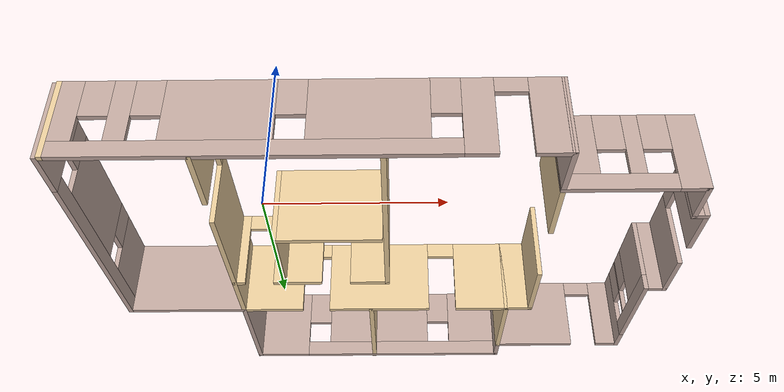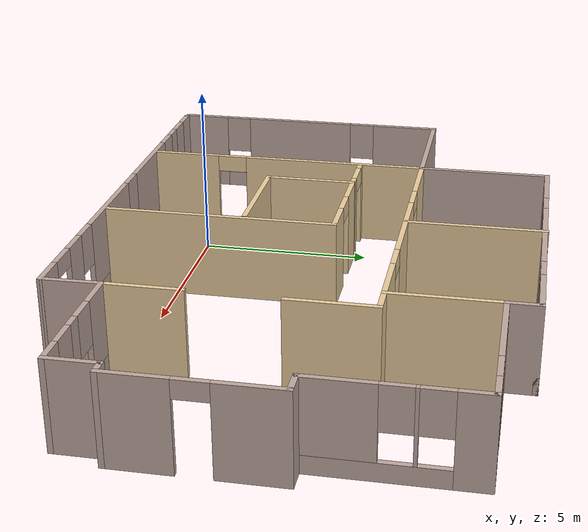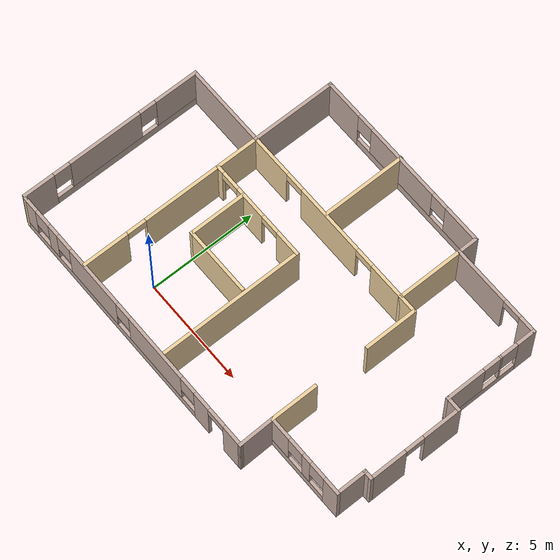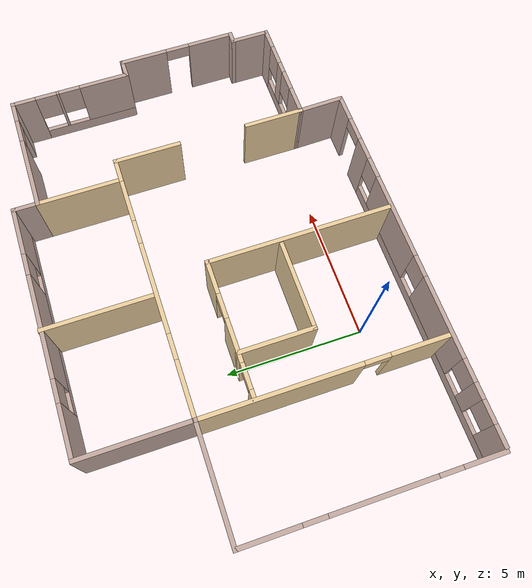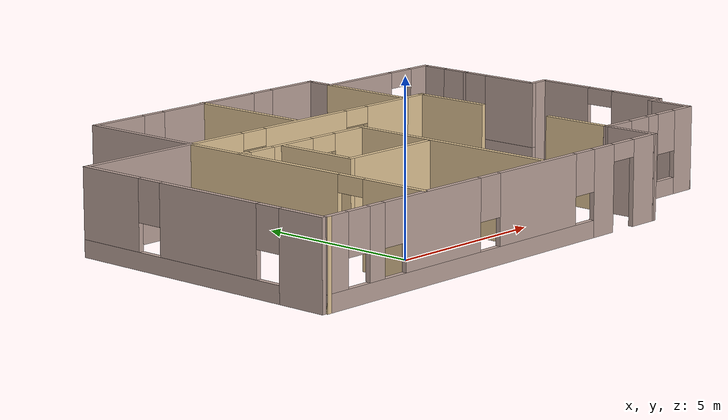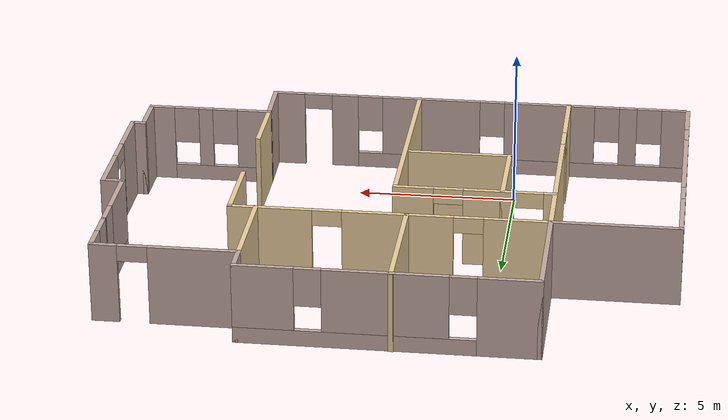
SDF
<?xml version='1.0'?>
<sdf version='1.6'>
  <model name='house'>
    <pose frame=''>3.405 4.15578 0 0 -0 0</pose>
    <link name='Wall_0'>
      <pose frame=''>-8.825 -1.91579 0 0 -0 1.5708</pose>
      <visual name='Wall_0_Visual_0'>
        <pose frame=''>-3.62852 0 1.25 0 -0 0</pose>
        <geometry>
          <box>
            <size>1.49296 0.15 2.5</size>
          </box>
        </geometry>
        <material>
          <script>
            <uri>file://media/materials/scripts/gazebo.material</uri>
            <name>Gazebo/Grey</name>
          </script>
          <ambient>0.760784 0.662745 0.627451 1</ambient>
        </material>
        <meta>
          <layer>0</layer>
        </meta>
      </visual>
      <collision name='Wall_0_Collision_0'>
        <geometry>
          <box>
            <size>1.49296 0.15 2.5</size>
          </box>
        </geometry>
        <pose frame=''>-3.62852 0 1.25 0 -0 0</pose>
      </collision>
      <visual name='Wall_0_Visual_1'>
        <pose frame=''>0.746481 0 0.25 0 -0 0</pose>
        <geometry>
          <box>
            <size>7.25704 0.15 0.5</size>
          </box>
        </geometry>
        <material>
          <script>
            <uri>file://media/materials/scripts/gazebo.material</uri>
            <name>Gazebo/Grey</name>
          </script>
          <ambient>0.760784 0.662745 0.627451 1</ambient>
        </material>
        <meta>
          <layer>0</layer>
        </meta>
      </visual>
      <collision name='Wall_0_Collision_1'>
        <geometry>
          <box>
            <size>7.25704 0.15 0.5</size>
          </box>
        </geometry>
        <pose frame=''>0.746481 0 0.25 0 -0 0</pose>
      </collision>
      <visual name='Wall_0_Visual_2'>
        <pose frame=''>-0.319829 0 1.5 0 -0 0</pose>
        <geometry>
          <box>
            <size>3.52442 0.15 2</size>
          </box>
        </geometry>
        <material>
          <script>
            <uri>file://media/materials/scripts/gazebo.material</uri>
            <name>Gazebo/Grey</name>
          </script>
          <ambient>0.760784 0.662745 0.627451 1</ambient>
        </material>
        <meta>
          <layer>0</layer>
        </meta>
      </visual>
      <collision name='Wall_0_Collision_2'>
        <geometry>
          <box>
            <size>3.52442 0.15 2</size>
          </box>
        </geometry>
        <pose frame=''>-0.319829 0 1.5 0 -0 0</pose>
      </collision>
      <visual name='Wall_0_Visual_3'>
        <pose frame=''>3.30869 0 1.5 0 -0 0</pose>
        <geometry>
          <box>
            <size>2.13262 0.15 2</size>
          </box>
        </geometry>
        <material>
          <script>
            <uri>file://media/materials/scripts/gazebo.material</uri>
            <name>Gazebo/Grey</name>
          </script>
          <ambient>0.760784 0.662745 0.627451 1</ambient>
        </material>
        <meta>
          <layer>0</layer>
        </meta>
      </visual>
      <collision name='Wall_0_Collision_3'>
        <geometry>
          <box>
            <size>2.13262 0.15 2</size>
          </box>
        </geometry>
        <pose frame=''>3.30869 0 1.5 0 -0 0</pose>
      </collision>
      <visual name='Wall_0_Visual_4'>
        <pose frame=''>-2.48204 0 1.9 0 -0 0</pose>
        <geometry>
          <box>
            <size>0.8 0.15 1.2</size>
          </box>
        </geometry>
        <material>
          <script>
            <uri>file://media/materials/scripts/gazebo.material</uri>
            <name>Gazebo/Grey</name>
          </script>
          <ambient>0.760784 0.662745 0.627451 1</ambient>
        </material>
        <meta>
          <layer>0</layer>
        </meta>
      </visual>
      <collision name='Wall_0_Collision_4'>
        <geometry>
          <box>
            <size>0.8 0.15 1.2</size>
          </box>
        </geometry>
        <pose frame=''>-2.48204 0 1.9 0 -0 0</pose>
      </collision>
      <visual name='Wall_0_Visual_5'>
        <pose frame=''>1.84238 0 1.9 0 -0 0</pose>
        <geometry>
          <box>
            <size>0.8 0.15 1.2</size>
          </box>
        </geometry>
        <material>
          <script>
            <uri>file://media/materials/scripts/gazebo.material</uri>
            <name>Gazebo/Grey</name>
          </script>
          <ambient>0.760784 0.662745 0.627451 1</ambient>
        </material>
        <meta>
          <layer>0</layer>
        </meta>
      </visual>
      <collision name='Wall_0_Collision_5'>
        <geometry>
          <box>
            <size>0.8 0.15 1.2</size>
          </box>
        </geometry>
        <pose frame=''>1.84238 0 1.9 0 -0 0</pose>
      </collision>
    </link>
    <link name='Wall_1'>
      <collision name='Wall_1_Collision'>
        <geometry>
          <box>
            <size>4 0.15 2.5</size>
          </box>
        </geometry>
        <pose frame=''>0 0 1.25 0 -0 0</pose>
      </collision>
      <visual name='Wall_1_Visual'>
        <pose frame=''>0 0 1.25 0 -0 0</pose>
        <geometry>
          <box>
            <size>4 0.15 2.5</size>
          </box>
        </geometry>
        <material>
          <script>
            <uri>file://media/materials/scripts/gazebo.material</uri>
            <name>Gazebo/Grey</name>
          </script>
          <ambient>0.760784 0.662745 0.627451 1</ambient>
        </material>
        <meta>
          <layer>0</layer>
        </meta>
      </visual>
      <pose frame=''>-6.9 2.38422 0 0 -0 0</pose>
    </link>
    <link name='Wall_10'>
      <collision name='Wall_10_Collision'>
        <geometry>
          <box>
            <size>1.5 0.15 2.5</size>
          </box>
        </geometry>
        <pose frame=''>0 0 1.25 0 -0 0</pose>
      </collision>
      <visual name='Wall_10_Visual'>
        <pose frame=''>0 0 1.25 0 -0 0</pose>
        <geometry>
          <box>
            <size>1.5 0.15 2.5</size>
          </box>
        </geometry>
        <material>
          <script>
            <uri>file://media/materials/scripts/gazebo.material</uri>
            <name>Gazebo/Grey</name>
          </script>
          <ambient>0.760784 0.662745 0.627451 1</ambient>
        </material>
        <meta>
          <layer>0</layer>
        </meta>
      </visual>
      <pose frame=''>8.475 -3.99078 0 0 0 -1.5708</pose>
    </link>
    <link name='Wall_11'>
      <pose frame=''>6.55 -4.66578 0 0 -0 3.14159</pose>
      <visual name='Wall_11_Visual_0'>
        <pose frame=''>-1.58472 0 1.25 0 -0 0</pose>
        <geometry>
          <box>
            <size>0.830568 0.15 2.5</size>
          </box>
        </geometry>
        <material>
          <script>
            <uri>file://media/materials/scripts/gazebo.material</uri>
            <name>Gazebo/Grey</name>
          </script>
          <ambient>0.760784 0.662745 0.627451 1</ambient>
        </material>
        <meta>
          <layer>0</layer>
        </meta>
      </visual>
      <collision name='Wall_11_Collision_0'>
        <geometry>
          <box>
            <size>0.830568 0.15 2.5</size>
          </box>
        </geometry>
        <pose frame=''>-1.58472 0 1.25 0 -0 0</pose>
      </collision>
      <visual name='Wall_11_Visual_1'>
        <pose frame=''>0.415284 0 0.25 0 -0 0</pose>
        <geometry>
          <box>
            <size>3.16943 0.15 0.5</size>
          </box>
        </geometry>
        <material>
          <script>
            <uri>file://media/materials/scripts/gazebo.material</uri>
            <name>Gazebo/Grey</name>
          </script>
          <ambient>0.760784 0.662745 0.627451 1</ambient>
        </material>
        <meta>
          <layer>0</layer>
        </meta>
      </visual>
      <collision name='Wall_11_Collision_1'>
        <geometry>
          <box>
            <size>3.16943 0.15 0.5</size>
          </box>
        </geometry>
        <pose frame=''>0.415284 0 0.25 0 -0 0</pose>
      </collision>
      <visual name='Wall_11_Visual_2'>
        <pose frame=''>-0.142371 0 1.5 0 -0 0</pose>
        <geometry>
          <box>
            <size>0.454123 0.15 2</size>
          </box>
        </geometry>
        <material>
          <script>
            <uri>file://media/materials/scripts/gazebo.material</uri>
            <name>Gazebo/Grey</name>
          </script>
          <ambient>0.760784 0.662745 0.627451 1</ambient>
        </material>
        <meta>
          <layer>0</layer>
        </meta>
      </visual>
      <collision name='Wall_11_Collision_2'>
        <geometry>
          <box>
            <size>0.454123 0.15 2</size>
          </box>
        </geometry>
        <pose frame=''>-0.142371 0 1.5 0 -0 0</pose>
      </collision>
      <visual name='Wall_11_Visual_3'>
        <pose frame=''>1.44234 0 1.5 0 -0 0</pose>
        <geometry>
          <box>
            <size>1.11531 0.15 2</size>
          </box>
        </geometry>
        <material>
          <script>
            <uri>file://media/materials/scripts/gazebo.material</uri>
            <name>Gazebo/Grey</name>
          </script>
          <ambient>0.760784 0.662745 0.627451 1</ambient>
        </material>
        <meta>
          <layer>0</layer>
        </meta>
      </visual>
      <collision name='Wall_11_Collision_3'>
        <geometry>
          <box>
            <size>1.11531 0.15 2</size>
          </box>
        </geometry>
        <pose frame=''>1.44234 0 1.5 0 -0 0</pose>
      </collision>
      <visual name='Wall_11_Visual_4'>
        <pose frame=''>-0.769432 0 1.9 0 -0 0</pose>
        <geometry>
          <box>
            <size>0.8 0.15 1.2</size>
          </box>
        </geometry>
        <material>
          <script>
            <uri>file://media/materials/scripts/gazebo.material</uri>
            <name>Gazebo/Grey</name>
          </script>
          <ambient>0.760784 0.662745 0.627451 1</ambient>
        </material>
        <meta>
          <layer>0</layer>
        </meta>
      </visual>
      <collision name='Wall_11_Collision_4'>
        <geometry>
          <box>
            <size>0.8 0.15 1.2</size>
          </box>
        </geometry>
        <pose frame=''>-0.769432 0 1.9 0 -0 0</pose>
      </collision>
      <visual name='Wall_11_Visual_5'>
        <pose frame=''>0.484691 0 1.9 0 -0 0</pose>
        <geometry>
          <box>
            <size>0.8 0.15 1.2</size>
          </box>
        </geometry>
        <material>
          <script>
            <uri>file://media/materials/scripts/gazebo.material</uri>
            <name>Gazebo/Grey</name>
          </script>
          <ambient>0.760784 0.662745 0.627451 1</ambient>
        </material>
        <meta>
          <layer>0</layer>
        </meta>
      </visual>
      <collision name='Wall_11_Collision_5'>
        <geometry>
          <box>
            <size>0.8 0.15 1.2</size>
          </box>
        </geometry>
        <pose frame=''>0.484691 0 1.9 0 -0 0</pose>
      </collision>
    </link>
    <link name='Wall_12'>
      <collision name='Wall_12_Collision'>
        <geometry>
          <box>
            <size>1.75 0.15 2.5</size>
          </box>
        </geometry>
        <pose frame=''>0 0 1.25 0 -0 0</pose>
      </collision>
      <visual name='Wall_12_Visual'>
        <pose frame=''>0 0 1.25 0 -0 0</pose>
        <geometry>
          <box>
            <size>1.75 0.15 2.5</size>
          </box>
        </geometry>
        <material>
          <script>
            <uri>file://media/materials/scripts/gazebo.material</uri>
            <name>Gazebo/Grey</name>
          </script>
          <ambient>0.760784 0.662745 0.627451 1</ambient>
        </material>
        <meta>
          <layer>0</layer>
        </meta>
      </visual>
      <pose frame=''>4.6425 -5.46579 0 0 0 -1.54893</pose>
    </link>
    <link name='Wall_13'>
      <pose frame=''>-2.015 -6.26579 0 0 -0 3.14159</pose>
      <visual name='Wall_13_Visual_0'>
        <pose frame=''>-6.22578 0 1.25 0 -0 0</pose>
        <geometry>
          <box>
            <size>1.04844 0.15 2.5</size>
          </box>
        </geometry>
        <material>
          <script>
            <uri>file://media/materials/scripts/gazebo.material</uri>
            <name>Gazebo/Grey</name>
          </script>
          <ambient>0.760784 0.662745 0.627451 1</ambient>
        </material>
        <meta>
          <layer>0</layer>
        </meta>
      </visual>
      <collision name='Wall_13_Collision_0'>
        <geometry>
          <box>
            <size>1.04844 0.15 2.5</size>
          </box>
        </geometry>
        <pose frame=''>-6.22578 0 1.25 0 -0 0</pose>
      </collision>
      <visual name='Wall_13_Visual_1'>
        <pose frame=''>-4.36778 0 1.25 0 -0 0</pose>
        <geometry>
          <box>
            <size>0.867551 0.15 2.5</size>
          </box>
        </geometry>
        <material>
          <script>
            <uri>file://media/materials/scripts/gazebo.material</uri>
            <name>Gazebo/Grey</name>
          </script>
          <ambient>0.760784 0.662745 0.627451 1</ambient>
        </material>
        <meta>
          <layer>0</layer>
        </meta>
      </visual>
      <collision name='Wall_13_Collision_1'>
        <geometry>
          <box>
            <size>0.867551 0.15 2.5</size>
          </box>
        </geometry>
        <pose frame=''>-4.36778 0 1.25 0 -0 0</pose>
      </collision>
      <visual name='Wall_13_Visual_2'>
        <pose frame=''>1.408 0 0.25 0 -0 0</pose>
        <geometry>
          <box>
            <size>10.684 0.15 0.5</size>
          </box>
        </geometry>
        <material>
          <script>
            <uri>file://media/materials/scripts/gazebo.material</uri>
            <name>Gazebo/Grey</name>
          </script>
          <ambient>0.760784 0.662745 0.627451 1</ambient>
        </material>
        <meta>
          <layer>0</layer>
        </meta>
      </visual>
      <collision name='Wall_13_Collision_2'>
        <geometry>
          <box>
            <size>10.684 0.15 0.5</size>
          </box>
        </geometry>
        <pose frame=''>1.408 0 0.25 0 -0 0</pose>
      </collision>
      <visual name='Wall_13_Visual_3'>
        <pose frame=''>-1.53271 0 1.5 0 -0 0</pose>
        <geometry>
          <box>
            <size>3.2026 0.15 2</size>
          </box>
        </geometry>
        <material>
          <script>
            <uri>file://media/materials/scripts/gazebo.material</uri>
            <name>Gazebo/Grey</name>
          </script>
          <ambient>0.760784 0.662745 0.627451 1</ambient>
        </material>
        <meta>
          <layer>0</layer>
        </meta>
      </visual>
      <collision name='Wall_13_Collision_3'>
        <geometry>
          <box>
            <size>3.2026 0.15 2</size>
          </box>
        </geometry>
        <pose frame=''>-1.53271 0 1.5 0 -0 0</pose>
      </collision>
      <visual name='Wall_13_Visual_4'>
        <pose frame=''>2.33915 0 1.5 0 -0 0</pose>
        <geometry>
          <box>
            <size>2.94112 0.15 2</size>
          </box>
        </geometry>
        <material>
          <script>
            <uri>file://media/materials/scripts/gazebo.material</uri>
            <name>Gazebo/Grey</name>
          </script>
          <ambient>0.760784 0.662745 0.627451 1</ambient>
        </material>
        <meta>
          <layer>0</layer>
        </meta>
      </visual>
      <collision name='Wall_13_Collision_4'>
        <geometry>
          <box>
            <size>2.94112 0.15 2</size>
          </box>
        </geometry>
        <pose frame=''>2.33915 0 1.5 0 -0 0</pose>
      </collision>
      <visual name='Wall_13_Visual_5'>
        <pose frame=''>4.89358 0 1.5 0 -0 0</pose>
        <geometry>
          <box>
            <size>0.567723 0.15 2</size>
          </box>
        </geometry>
        <material>
          <script>
            <uri>file://media/materials/scripts/gazebo.material</uri>
            <name>Gazebo/Grey</name>
          </script>
          <ambient>0.760784 0.662745 0.627451 1</ambient>
        </material>
        <meta>
          <layer>0</layer>
        </meta>
      </visual>
      <collision name='Wall_13_Collision_5'>
        <geometry>
          <box>
            <size>0.567723 0.15 2</size>
          </box>
        </geometry>
        <pose frame=''>4.89358 0 1.5 0 -0 0</pose>
      </collision>
      <visual name='Wall_13_Visual_6'>
        <pose frame=''>6.36372 0 1.5 0 -0 0</pose>
        <geometry>
          <box>
            <size>0.772562 0.15 2</size>
          </box>
        </geometry>
        <material>
          <script>
            <uri>file://media/materials/scripts/gazebo.material</uri>
            <name>Gazebo/Grey</name>
          </script>
          <ambient>0.760784 0.662745 0.627451 1</ambient>
        </material>
        <meta>
          <layer>0</layer>
        </meta>
      </visual>
      <collision name='Wall_13_Collision_6'>
        <geometry>
          <box>
            <size>0.772562 0.15 2</size>
          </box>
        </geometry>
        <pose frame=''>6.36372 0 1.5 0 -0 0</pose>
      </collision>
      <visual name='Wall_13_Visual_7'>
        <pose frame=''>-3.53401 0 1.9 0 -0 0</pose>
        <geometry>
          <box>
            <size>0.8 0.15 1.2</size>
          </box>
        </geometry>
        <material>
          <script>
            <uri>file://media/materials/scripts/gazebo.material</uri>
            <name>Gazebo/Grey</name>
          </script>
          <ambient>0.760784 0.662745 0.627451 1</ambient>
        </material>
        <meta>
          <layer>0</layer>
        </meta>
      </visual>
      <collision name='Wall_13_Collision_7'>
        <geometry>
          <box>
            <size>0.8 0.15 1.2</size>
          </box>
        </geometry>
        <pose frame=''>-3.53401 0 1.9 0 -0 0</pose>
      </collision>
      <visual name='Wall_13_Visual_8'>
        <pose frame=''>0.468591 0 1.9 0 -0 0</pose>
        <geometry>
          <box>
            <size>0.8 0.15 1.2</size>
          </box>
        </geometry>
        <material>
          <script>
            <uri>file://media/materials/scripts/gazebo.material</uri>
            <name>Gazebo/Grey</name>
          </script>
          <ambient>0.760784 0.662745 0.627451 1</ambient>
        </material>
        <meta>
          <layer>0</layer>
        </meta>
      </visual>
      <collision name='Wall_13_Collision_8'>
        <geometry>
          <box>
            <size>0.8 0.15 1.2</size>
          </box>
        </geometry>
        <pose frame=''>0.468591 0 1.9 0 -0 0</pose>
      </collision>
      <visual name='Wall_13_Visual_9'>
        <pose frame=''>4.20972 0 1.9 0 -0 0</pose>
        <geometry>
          <box>
            <size>0.8 0.15 1.2</size>
          </box>
        </geometry>
        <material>
          <script>
            <uri>file://media/materials/scripts/gazebo.material</uri>
            <name>Gazebo/Grey</name>
          </script>
          <ambient>0.760784 0.662745 0.627451 1</ambient>
        </material>
        <meta>
          <layer>0</layer>
        </meta>
      </visual>
      <collision name='Wall_13_Collision_9'>
        <geometry>
          <box>
            <size>0.8 0.15 1.2</size>
          </box>
        </geometry>
        <pose frame=''>4.20972 0 1.9 0 -0 0</pose>
      </collision>
      <visual name='Wall_13_Visual_10'>
        <pose frame=''>5.57744 0 1.9 0 -0 0</pose>
        <geometry>
          <box>
            <size>0.8 0.15 1.2</size>
          </box>
        </geometry>
        <material>
          <script>
            <uri>file://media/materials/scripts/gazebo.material</uri>
            <name>Gazebo/Grey</name>
          </script>
          <ambient>0.760784 0.662745 0.627451 1</ambient>
        </material>
        <meta>
          <layer>0</layer>
        </meta>
      </visual>
      <collision name='Wall_13_Collision_10'>
        <geometry>
          <box>
            <size>0.8 0.15 1.2</size>
          </box>
        </geometry>
        <pose frame=''>5.57744 0 1.9 0 -0 0</pose>
      </collision>
      <visual name='Wall_13_Visual_11'>
        <pose frame=''>-5.25156 0 2.25 0 -0 0</pose>
        <geometry>
          <box>
            <size>0.9 0.15 0.5</size>
          </box>
        </geometry>
        <material>
          <script>
            <uri>file://media/materials/scripts/gazebo.material</uri>
            <name>Gazebo/Grey</name>
          </script>
          <ambient>0.760784 0.662745 0.627451 1</ambient>
        </material>
        <meta>
          <layer>0</layer>
        </meta>
      </visual>
      <collision name='Wall_13_Collision_11'>
        <geometry>
          <box>
            <size>0.9 0.15 0.5</size>
          </box>
        </geometry>
        <pose frame=''>-5.25156 0 2.25 0 -0 0</pose>
      </collision>
    </link>
    <link name='Wall_14'>
      <collision name='Wall_14_Collision'>
        <geometry>
          <box>
            <size>0.15 0.15 2.5</size>
          </box>
        </geometry>
        <pose frame=''>0 0 1.25 0 -0 0</pose>
      </collision>
      <visual name='Wall_14_Visual'>
        <pose frame=''>0 0 1.25 0 -0 0</pose>
        <geometry>
          <box>
            <size>0.15 0.15 2.5</size>
          </box>
        </geometry>
        <material>
          <script>
            <uri>file://media/materials/scripts/gazebo.material</uri>
            <name>Gazebo/Grey</name>
          </script>
          <ambient>0.921569 0.807843 0.615686 1</ambient>
        </material>
        <meta>
          <layer>0</layer>
        </meta>
      </visual>
      <pose frame=''>-8.69 -6.26579 0 0 -0 0</pose>
    </link>
    <link name='Wall_16'>
      <pose frame=''>-4.975 -1.91579 0 0 0 -1.5708</pose>
      <visual name='Wall_16_Visual_0'>
        <pose frame=''>-1.53503 0 1.25 0 -0 0</pose>
        <geometry>
          <box>
            <size>5.67994 0.15 2.5</size>
          </box>
        </geometry>
        <material>
          <script>
            <uri>file://media/materials/scripts/gazebo.material</uri>
            <name>Gazebo/Grey</name>
          </script>
          <ambient>0.921569 0.807843 0.615686 1</ambient>
        </material>
        <meta>
          <layer>0</layer>
        </meta>
      </visual>
      <collision name='Wall_16_Collision_0'>
        <geometry>
          <box>
            <size>5.67994 0.15 2.5</size>
          </box>
        </geometry>
        <pose frame=''>-1.53503 0 1.25 0 -0 0</pose>
      </collision>
      <visual name='Wall_16_Visual_1'>
        <pose frame=''>3.28997 0 1.25 0 -0 0</pose>
        <geometry>
          <box>
            <size>2.17006 0.15 2.5</size>
          </box>
        </geometry>
        <material>
          <script>
            <uri>file://media/materials/scripts/gazebo.material</uri>
            <name>Gazebo/Grey</name>
          </script>
          <ambient>0.921569 0.807843 0.615686 1</ambient>
        </material>
        <meta>
          <layer>0</layer>
        </meta>
      </visual>
      <collision name='Wall_16_Collision_1'>
        <geometry>
          <box>
            <size>2.17006 0.15 2.5</size>
          </box>
        </geometry>
        <pose frame=''>3.28997 0 1.25 0 -0 0</pose>
      </collision>
      <visual name='Wall_16_Visual_2'>
        <pose frame=''>1.75494 0 2.25 0 -0 0</pose>
        <geometry>
          <box>
            <size>0.9 0.15 0.5</size>
          </box>
        </geometry>
        <material>
          <script>
            <uri>file://media/materials/scripts/gazebo.material</uri>
            <name>Gazebo/Grey</name>
          </script>
          <ambient>0.921569 0.807843 0.615686 1</ambient>
        </material>
        <meta>
          <layer>0</layer>
        </meta>
      </visual>
      <collision name='Wall_16_Collision_2'>
        <geometry>
          <box>
            <size>0.9 0.15 0.5</size>
          </box>
        </geometry>
        <pose frame=''>1.75494 0 2.25 0 -0 0</pose>
      </collision>
    </link>
    <link name='Wall_18'>
      <pose frame=''>-0.55 2.38422 0 0 -0 0</pose>
      <visual name='Wall_18_Visual_0'>
        <pose frame=''>-3.46651 0 1.25 0 -0 0</pose>
        <geometry>
          <box>
            <size>2.06698 0.15 2.5</size>
          </box>
        </geometry>
        <material>
          <script>
            <uri>file://media/materials/scripts/gazebo.material</uri>
            <name>Gazebo/Grey</name>
          </script>
          <ambient>0.921569 0.807843 0.615686 1</ambient>
        </material>
        <meta>
          <layer>0</layer>
        </meta>
      </visual>
      <collision name='Wall_18_Collision_0'>
        <geometry>
          <box>
            <size>2.06698 0.15 2.5</size>
          </box>
        </geometry>
        <pose frame=''>-3.46651 0 1.25 0 -0 0</pose>
      </collision>
      <visual name='Wall_18_Visual_1'>
        <pose frame=''>0.144147 0 1.25 0 -0 0</pose>
        <geometry>
          <box>
            <size>3.35433 0.15 2.5</size>
          </box>
        </geometry>
        <material>
          <script>
            <uri>file://media/materials/scripts/gazebo.material</uri>
            <name>Gazebo/Grey</name>
          </script>
          <ambient>0.921569 0.807843 0.615686 1</ambient>
        </material>
        <meta>
          <layer>0</layer>
        </meta>
      </visual>
      <collision name='Wall_18_Collision_1'>
        <geometry>
          <box>
            <size>3.35433 0.15 2.5</size>
          </box>
        </geometry>
        <pose frame=''>0.144147 0 1.25 0 -0 0</pose>
      </collision>
      <visual name='Wall_18_Visual_2'>
        <pose frame=''>3.61066 0 1.25 0 -0 0</pose>
        <geometry>
          <box>
            <size>1.77869 0.15 2.5</size>
          </box>
        </geometry>
        <material>
          <script>
            <uri>file://media/materials/scripts/gazebo.material</uri>
            <name>Gazebo/Grey</name>
          </script>
          <ambient>0.921569 0.807843 0.615686 1</ambient>
        </material>
        <meta>
          <layer>0</layer>
        </meta>
      </visual>
      <collision name='Wall_18_Collision_2'>
        <geometry>
          <box>
            <size>1.77869 0.15 2.5</size>
          </box>
        </geometry>
        <pose frame=''>3.61066 0 1.25 0 -0 0</pose>
      </collision>
      <visual name='Wall_18_Visual_3'>
        <pose frame=''>-1.98302 0 2.25 0 -0 0</pose>
        <geometry>
          <box>
            <size>0.9 0.15 0.5</size>
          </box>
        </geometry>
        <material>
          <script>
            <uri>file://media/materials/scripts/gazebo.material</uri>
            <name>Gazebo/Grey</name>
          </script>
          <ambient>0.921569 0.807843 0.615686 1</ambient>
        </material>
        <meta>
          <layer>0</layer>
        </meta>
      </visual>
      <collision name='Wall_18_Collision_3'>
        <geometry>
          <box>
            <size>0.9 0.15 0.5</size>
          </box>
        </geometry>
        <pose frame=''>-1.98302 0 2.25 0 -0 0</pose>
      </collision>
      <visual name='Wall_18_Visual_4'>
        <pose frame=''>2.27131 0 2.25 0 -0 0</pose>
        <geometry>
          <box>
            <size>0.9 0.15 0.5</size>
          </box>
        </geometry>
        <material>
          <script>
            <uri>file://media/materials/scripts/gazebo.material</uri>
            <name>Gazebo/Grey</name>
          </script>
          <ambient>0.921569 0.807843 0.615686 1</ambient>
        </material>
        <meta>
          <layer>0</layer>
        </meta>
      </visual>
      <collision name='Wall_18_Collision_4'>
        <geometry>
          <box>
            <size>0.9 0.15 0.5</size>
          </box>
        </geometry>
        <pose frame=''>2.27131 0 2.25 0 -0 0</pose>
      </collision>
    </link>
    <link name='Wall_19'>
      <collision name='Wall_19_Collision'>
        <geometry>
          <box>
            <size>3.15 0.15 2.5</size>
          </box>
        </geometry>
        <pose frame=''>0 0 1.25 0 -0 0</pose>
      </collision>
      <visual name='Wall_19_Visual'>
        <pose frame=''>0 0 1.25 0 -0 0</pose>
        <geometry>
          <box>
            <size>3.15 0.15 2.5</size>
          </box>
        </geometry>
        <material>
          <script>
            <uri>file://media/materials/scripts/gazebo.material</uri>
            <name>Gazebo/Grey</name>
          </script>
          <ambient>0.921569 0.807843 0.615686 1</ambient>
        </material>
        <meta>
          <layer>0</layer>
        </meta>
      </visual>
      <pose frame=''>3.875 3.88422 0 0 -0 1.5708</pose>
    </link>
    <link name='Wall_2'>
      <collision name='Wall_2_Collision'>
        <geometry>
          <box>
            <size>4 0.15 2.5</size>
          </box>
        </geometry>
        <pose frame=''>0 0 1.25 0 -0 0</pose>
      </collision>
      <visual name='Wall_2_Visual'>
        <pose frame=''>0 0 1.25 0 -0 0</pose>
        <geometry>
          <box>
            <size>4 0.15 2.5</size>
          </box>
        </geometry>
        <material>
          <script>
            <uri>file://media/materials/scripts/gazebo.material</uri>
            <name>Gazebo/Grey</name>
          </script>
          <ambient>0.760784 0.662745 0.627451 1</ambient>
        </material>
        <meta>
          <layer>0</layer>
        </meta>
      </visual>
      <pose frame=''>-4.975 4.30922 0 0 -0 1.5708</pose>
    </link>
    <link name='Wall_21'>
      <collision name='Wall_21_Collision'>
        <geometry>
          <box>
            <size>2.25 0.15 2.5</size>
          </box>
        </geometry>
        <pose frame=''>0 0 1.25 0 -0 0</pose>
      </collision>
      <visual name='Wall_21_Visual'>
        <pose frame=''>0 0 1.25 0 -0 0</pose>
        <geometry>
          <box>
            <size>2.25 0.15 2.5</size>
          </box>
        </geometry>
        <material>
          <script>
            <uri>file://media/materials/scripts/gazebo.material</uri>
            <name>Gazebo/Grey</name>
          </script>
          <ambient>0.921569 0.807843 0.615686 1</ambient>
        </material>
        <meta>
          <layer>0</layer>
        </meta>
      </visual>
      <pose frame=''>4.625 -3.61578 0 0 -0 1.5708</pose>
    </link>
    <link name='Wall_23'>
      <collision name='Wall_23_Collision'>
        <geometry>
          <box>
            <size>0.939 0.15 2.5</size>
          </box>
        </geometry>
        <pose frame=''>0 0 1.25 0 -0 0</pose>
      </collision>
      <visual name='Wall_23_Visual'>
        <pose frame=''>0 0 1.25 0 -0 0</pose>
        <geometry>
          <box>
            <size>0.939 0.15 2.5</size>
          </box>
        </geometry>
        <material>
          <script>
            <uri>file://media/materials/scripts/gazebo.material</uri>
            <name>Gazebo/Grey</name>
          </script>
          <ambient>0.921569 0.807843 0.615686 1</ambient>
        </material>
        <meta>
          <layer>0</layer>
        </meta>
      </visual>
      <pose frame=''>4.2695 2.38422 0 0 -0 0</pose>
    </link>
    <link name='Wall_24'>
      <collision name='Wall_24_Collision'>
        <geometry>
          <box>
            <size>2.5 0.15 2.5</size>
          </box>
        </geometry>
        <pose frame=''>0 0 1.25 0 -0 0</pose>
      </collision>
      <visual name='Wall_24_Visual'>
        <pose frame=''>0 0 1.25 0 -0 0</pose>
        <geometry>
          <box>
            <size>2.5 0.15 2.5</size>
          </box>
        </geometry>
        <material>
          <script>
            <uri>file://media/materials/scripts/gazebo.material</uri>
            <name>Gazebo/Grey</name>
          </script>
          <ambient>0.921569 0.807843 0.615686 1</ambient>
        </material>
        <meta>
          <layer>0</layer>
        </meta>
      </visual>
      <pose frame=''>4.664 1.20921 0 0 0 -1.5708</pose>
    </link>
    <link name='Wall_28'>
      <pose frame=''>-2.525 0.452215 0 0 -0 0</pose>
      <visual name='Wall_28_Visual_0'>
        <pose frame=''>-2.3018 0 1.25 0 -0 0</pose>
        <geometry>
          <box>
            <size>0.396406 0.15 2.5</size>
          </box>
        </geometry>
        <material>
          <script>
            <uri>file://media/materials/scripts/gazebo.material</uri>
            <name>Gazebo/Grey</name>
          </script>
          <ambient>0.921569 0.807843 0.615686 1</ambient>
        </material>
        <meta>
          <layer>0</layer>
        </meta>
      </visual>
      <collision name='Wall_28_Collision_0'>
        <geometry>
          <box>
            <size>0.396406 0.15 2.5</size>
          </box>
        </geometry>
        <pose frame=''>-2.3018 0 1.25 0 -0 0</pose>
      </collision>
      <visual name='Wall_28_Visual_1'>
        <pose frame=''>-0.429985 0 1.25 0 -0 0</pose>
        <geometry>
          <box>
            <size>1.54722 0.15 2.5</size>
          </box>
        </geometry>
        <material>
          <script>
            <uri>file://media/materials/scripts/gazebo.material</uri>
            <name>Gazebo/Grey</name>
          </script>
          <ambient>0.921569 0.807843 0.615686 1</ambient>
        </material>
        <meta>
          <layer>0</layer>
        </meta>
      </visual>
      <collision name='Wall_28_Collision_1'>
        <geometry>
          <box>
            <size>1.54722 0.15 2.5</size>
          </box>
        </geometry>
        <pose frame=''>-0.429985 0 1.25 0 -0 0</pose>
      </collision>
      <visual name='Wall_28_Visual_2'>
        <pose frame=''>1.87181 0 1.25 0 -0 0</pose>
        <geometry>
          <box>
            <size>1.25638 0.15 2.5</size>
          </box>
        </geometry>
        <material>
          <script>
            <uri>file://media/materials/scripts/gazebo.material</uri>
            <name>Gazebo/Grey</name>
          </script>
          <ambient>0.921569 0.807843 0.615686 1</ambient>
        </material>
        <meta>
          <layer>0</layer>
        </meta>
      </visual>
      <collision name='Wall_28_Collision_2'>
        <geometry>
          <box>
            <size>1.25638 0.15 2.5</size>
          </box>
        </geometry>
        <pose frame=''>1.87181 0 1.25 0 -0 0</pose>
      </collision>
      <visual name='Wall_28_Visual_3'>
        <pose frame=''>-1.65359 0 2.25 0 -0 0</pose>
        <geometry>
          <box>
            <size>0.9 0.15 0.5</size>
          </box>
        </geometry>
        <material>
          <script>
            <uri>file://media/materials/scripts/gazebo.material</uri>
            <name>Gazebo/Grey</name>
          </script>
          <ambient>0.921569 0.807843 0.615686 1</ambient>
        </material>
        <meta>
          <layer>0</layer>
        </meta>
      </visual>
      <collision name='Wall_28_Collision_3'>
        <geometry>
          <box>
            <size>0.9 0.15 0.5</size>
          </box>
        </geometry>
        <pose frame=''>-1.65359 0 2.25 0 -0 0</pose>
      </collision>
      <visual name='Wall_28_Visual_4'>
        <pose frame=''>0.793624 0 2.25 0 -0 0</pose>
        <geometry>
          <box>
            <size>0.9 0.15 0.5</size>
          </box>
        </geometry>
        <material>
          <script>
            <uri>file://media/materials/scripts/gazebo.material</uri>
            <name>Gazebo/Grey</name>
          </script>
          <ambient>0.921569 0.807843 0.615686 1</ambient>
        </material>
        <meta>
          <layer>0</layer>
        </meta>
      </visual>
      <collision name='Wall_28_Collision_4'>
        <geometry>
          <box>
            <size>0.9 0.15 0.5</size>
          </box>
        </geometry>
        <pose frame=''>0.793624 0 2.25 0 -0 0</pose>
      </collision>
    </link>
    <link name='Wall_29'>
      <collision name='Wall_29_Collision'>
        <geometry>
          <box>
            <size>6.75 0.15 2.5</size>
          </box>
        </geometry>
        <pose frame=''>0 0 1.25 0 -0 0</pose>
      </collision>
      <visual name='Wall_29_Visual'>
        <pose frame=''>0 0 1.25 0 -0 0</pose>
        <geometry>
          <box>
            <size>6.75 0.15 2.5</size>
          </box>
        </geometry>
        <material>
          <script>
            <uri>file://media/materials/scripts/gazebo.material</uri>
            <name>Gazebo/Grey</name>
          </script>
          <ambient>0.921569 0.807843 0.615686 1</ambient>
        </material>
        <meta>
          <layer>0</layer>
        </meta>
      </visual>
      <pose frame=''>-0.1 -2.84779 0 0 0 -1.5708</pose>
    </link>
    <link name='Wall_3'>
      <pose frame=''>-0.55 6.23422 0 0 -0 0</pose>
      <visual name='Wall_3_Visual_0'>
        <pose frame=''>-3.552 0 1.25 0 -0 0</pose>
        <geometry>
          <box>
            <size>1.89599 0.15 2.5</size>
          </box>
        </geometry>
        <material>
          <script>
            <uri>file://media/materials/scripts/gazebo.material</uri>
            <name>Gazebo/Grey</name>
          </script>
          <ambient>0.760784 0.662745 0.627451 1</ambient>
        </material>
        <meta>
          <layer>0</layer>
        </meta>
      </visual>
      <collision name='Wall_3_Collision_0'>
        <geometry>
          <box>
            <size>1.89599 0.15 2.5</size>
          </box>
        </geometry>
        <pose frame=''>-3.552 0 1.25 0 -0 0</pose>
      </collision>
      <visual name='Wall_3_Visual_1'>
        <pose frame=''>0.947997 0 0.25 0 -0 0</pose>
        <geometry>
          <box>
            <size>7.10401 0.15 0.5</size>
          </box>
        </geometry>
        <material>
          <script>
            <uri>file://media/materials/scripts/gazebo.material</uri>
            <name>Gazebo/Grey</name>
          </script>
          <ambient>0.760784 0.662745 0.627451 1</ambient>
        </material>
        <meta>
          <layer>0</layer>
        </meta>
      </visual>
      <collision name='Wall_3_Collision_1'>
        <geometry>
          <box>
            <size>7.10401 0.15 0.5</size>
          </box>
        </geometry>
        <pose frame=''>0.947997 0 0.25 0 -0 0</pose>
      </collision>
      <visual name='Wall_3_Visual_2'>
        <pose frame=''>0.041278 0 1.5 0 -0 0</pose>
        <geometry>
          <box>
            <size>3.69057 0.15 2</size>
          </box>
        </geometry>
        <material>
          <script>
            <uri>file://media/materials/scripts/gazebo.material</uri>
            <name>Gazebo/Grey</name>
          </script>
          <ambient>0.760784 0.662745 0.627451 1</ambient>
        </material>
        <meta>
          <layer>0</layer>
        </meta>
      </visual>
      <collision name='Wall_3_Collision_2'>
        <geometry>
          <box>
            <size>3.69057 0.15 2</size>
          </box>
        </geometry>
        <pose frame=''>0.041278 0 1.5 0 -0 0</pose>
      </collision>
      <visual name='Wall_3_Visual_3'>
        <pose frame=''>3.59328 0 1.5 0 -0 0</pose>
        <geometry>
          <box>
            <size>1.81344 0.15 2</size>
          </box>
        </geometry>
        <material>
          <script>
            <uri>file://media/materials/scripts/gazebo.material</uri>
            <name>Gazebo/Grey</name>
          </script>
          <ambient>0.760784 0.662745 0.627451 1</ambient>
        </material>
        <meta>
          <layer>0</layer>
        </meta>
      </visual>
      <collision name='Wall_3_Collision_3'>
        <geometry>
          <box>
            <size>1.81344 0.15 2</size>
          </box>
        </geometry>
        <pose frame=''>3.59328 0 1.5 0 -0 0</pose>
      </collision>
      <visual name='Wall_3_Visual_4'>
        <pose frame=''>-2.20401 0 1.9 0 -0 0</pose>
        <geometry>
          <box>
            <size>0.8 0.15 1.2</size>
          </box>
        </geometry>
        <material>
          <script>
            <uri>file://media/materials/scripts/gazebo.material</uri>
            <name>Gazebo/Grey</name>
          </script>
          <ambient>0.760784 0.662745 0.627451 1</ambient>
        </material>
        <meta>
          <layer>0</layer>
        </meta>
      </visual>
      <collision name='Wall_3_Collision_4'>
        <geometry>
          <box>
            <size>0.8 0.15 1.2</size>
          </box>
        </geometry>
        <pose frame=''>-2.20401 0 1.9 0 -0 0</pose>
      </collision>
      <visual name='Wall_3_Visual_5'>
        <pose frame=''>2.28656 0 1.9 0 -0 0</pose>
        <geometry>
          <box>
            <size>0.8 0.15 1.2</size>
          </box>
        </geometry>
        <material>
          <script>
            <uri>file://media/materials/scripts/gazebo.material</uri>
            <name>Gazebo/Grey</name>
          </script>
          <ambient>0.760784 0.662745 0.627451 1</ambient>
        </material>
        <meta>
          <layer>0</layer>
        </meta>
      </visual>
      <collision name='Wall_3_Collision_5'>
        <geometry>
          <box>
            <size>0.8 0.15 1.2</size>
          </box>
        </geometry>
        <pose frame=''>2.28656 0 1.9 0 -0 0</pose>
      </collision>
    </link>
    <link name='Wall_31'>
      <collision name='Wall_31_Collision'>
        <geometry>
          <box>
            <size>2.75 0.15 2.5</size>
          </box>
        </geometry>
        <pose frame=''>0 0 1.25 0 -0 0</pose>
      </collision>
      <visual name='Wall_31_Visual'>
        <pose frame=''>0 0 1.25 0 -0 0</pose>
        <geometry>
          <box>
            <size>2.75 0.15 2.5</size>
          </box>
        </geometry>
        <material>
          <script>
            <uri>file://media/materials/scripts/gazebo.material</uri>
            <name>Gazebo/Grey</name>
          </script>
          <ambient>0.921569 0.807843 0.615686 1</ambient>
        </material>
        <meta>
          <layer>0</layer>
        </meta>
      </visual>
      <pose frame=''>-3.381 -0.847785 0 0 0 -1.5708</pose>
    </link>
    <link name='Wall_32'>
      <collision name='Wall_32_Collision'>
        <geometry>
          <box>
            <size>3.25 0.15 2.5</size>
          </box>
        </geometry>
        <pose frame=''>0 0 1.25 0 -0 0</pose>
      </collision>
      <visual name='Wall_32_Visual'>
        <pose frame=''>0 0 1.25 0 -0 0</pose>
        <geometry>
          <box>
            <size>3.25 0.15 2.5</size>
          </box>
        </geometry>
        <material>
          <script>
            <uri>file://media/materials/scripts/gazebo.material</uri>
            <name>Gazebo/Grey</name>
          </script>
          <ambient>0.921569 0.807843 0.615686 1</ambient>
        </material>
        <meta>
          <layer>0</layer>
        </meta>
      </visual>
      <pose frame=''>-1.831 -2.14778 0 0 -0 0</pose>
    </link>
    <link name='Wall_4'>
      <collision name='Wall_4_Collision'>
        <geometry>
          <box>
            <size>1 0.15 2.5</size>
          </box>
        </geometry>
        <pose frame=''>0 0 1.25 0 -0 0</pose>
      </collision>
      <visual name='Wall_4_Visual'>
        <pose frame=''>0 0 1.25 0 -0 0</pose>
        <geometry>
          <box>
            <size>1 0.15 2.5</size>
          </box>
        </geometry>
        <material>
          <script>
            <uri>file://media/materials/scripts/gazebo.material</uri>
            <name>Gazebo/Grey</name>
          </script>
          <ambient>0.760784 0.662745 0.627451 1</ambient>
        </material>
        <meta>
          <layer>0</layer>
        </meta>
      </visual>
      <pose frame=''>3.875 5.80922 0 0 0 -1.5708</pose>
    </link>
    <link name='Wall_41'>
      <collision name='Wall_41_Collision'>
        <geometry>
          <box>
            <size>4 0.15 2.5</size>
          </box>
        </geometry>
        <pose frame=''>0 0 1.25 0 -0 0</pose>
      </collision>
      <visual name='Wall_41_Visual'>
        <pose frame=''>0 0 1.25 0 -0 0</pose>
        <geometry>
          <box>
            <size>4 0.15 2.5</size>
          </box>
        </geometry>
        <material>
          <script>
            <uri>file://media/materials/scripts/gazebo.material</uri>
            <name>Gazebo/Grey</name>
          </script>
          <ambient>0.921569 0.807843 0.615686 1</ambient>
        </material>
        <meta>
          <layer>0</layer>
        </meta>
      </visual>
      <pose frame=''>-0.672 4.34222 0 0 0 -1.5708</pose>
    </link>
    <link name='Wall_5'>
      <pose frame=''>6.05 5.38422 0 0 -0 0</pose>
      <visual name='Wall_5_Visual_0'>
        <pose frame=''>-0.869903 0 1.25 0 -0 0</pose>
        <geometry>
          <box>
            <size>2.76019 0.15 2.5</size>
          </box>
        </geometry>
        <material>
          <script>
            <uri>file://media/materials/scripts/gazebo.material</uri>
            <name>Gazebo/Grey</name>
          </script>
          <ambient>0.760784 0.662745 0.627451 1</ambient>
        </material>
        <meta>
          <layer>0</layer>
        </meta>
      </visual>
      <collision name='Wall_5_Collision_0'>
        <geometry>
          <box>
            <size>2.76019 0.15 2.5</size>
          </box>
        </geometry>
        <pose frame=''>-0.869903 0 1.25 0 -0 0</pose>
      </collision>
      <visual name='Wall_5_Visual_1'>
        <pose frame=''>1.8301 0 1.25 0 -0 0</pose>
        <geometry>
          <box>
            <size>0.839806 0.15 2.5</size>
          </box>
        </geometry>
        <material>
          <script>
            <uri>file://media/materials/scripts/gazebo.material</uri>
            <name>Gazebo/Grey</name>
          </script>
          <ambient>0.760784 0.662745 0.627451 1</ambient>
        </material>
        <meta>
          <layer>0</layer>
        </meta>
      </visual>
      <collision name='Wall_5_Collision_1'>
        <geometry>
          <box>
            <size>0.839806 0.15 2.5</size>
          </box>
        </geometry>
        <pose frame=''>1.8301 0 1.25 0 -0 0</pose>
      </collision>
      <visual name='Wall_5_Visual_2'>
        <pose frame=''>0.960194 0 2.25 0 -0 0</pose>
        <geometry>
          <box>
            <size>0.9 0.15 0.5</size>
          </box>
        </geometry>
        <material>
          <script>
            <uri>file://media/materials/scripts/gazebo.material</uri>
            <name>Gazebo/Grey</name>
          </script>
          <ambient>0.760784 0.662745 0.627451 1</ambient>
        </material>
        <meta>
          <layer>0</layer>
        </meta>
      </visual>
      <collision name='Wall_5_Collision_2'>
        <geometry>
          <box>
            <size>0.9 0.15 0.5</size>
          </box>
        </geometry>
        <pose frame=''>0.960194 0 2.25 0 -0 0</pose>
      </collision>
    </link>
    <link name='Wall_6'>
      <pose frame=''>8.225 3.20921 0 0 0 -1.5708</pose>
      <visual name='Wall_6_Visual_0'>
        <pose frame=''>-1.7905 0 1.25 0 -0 0</pose>
        <geometry>
          <box>
            <size>0.919005 0.15 2.5</size>
          </box>
        </geometry>
        <material>
          <script>
            <uri>file://media/materials/scripts/gazebo.material</uri>
            <name>Gazebo/Grey</name>
          </script>
          <ambient>0.760784 0.662745 0.627451 1</ambient>
        </material>
        <meta>
          <layer>0</layer>
        </meta>
      </visual>
      <collision name='Wall_6_Collision_0'>
        <geometry>
          <box>
            <size>0.919005 0.15 2.5</size>
          </box>
        </geometry>
        <pose frame=''>-1.7905 0 1.25 0 -0 0</pose>
      </collision>
      <visual name='Wall_6_Visual_1'>
        <pose frame=''>0.459503 0 0.25 0 -0 0</pose>
        <geometry>
          <box>
            <size>3.581 0.15 0.5</size>
          </box>
        </geometry>
        <material>
          <script>
            <uri>file://media/materials/scripts/gazebo.material</uri>
            <name>Gazebo/Grey</name>
          </script>
          <ambient>0.760784 0.662745 0.627451 1</ambient>
        </material>
        <meta>
          <layer>0</layer>
        </meta>
      </visual>
      <collision name='Wall_6_Collision_1'>
        <geometry>
          <box>
            <size>3.581 0.15 0.5</size>
          </box>
        </geometry>
        <pose frame=''>0.459503 0 0.25 0 -0 0</pose>
      </collision>
      <visual name='Wall_6_Visual_2'>
        <pose frame=''>-0.485984 0 1.5 0 -0 0</pose>
        <geometry>
          <box>
            <size>0.090022 0.15 2</size>
          </box>
        </geometry>
        <material>
          <script>
            <uri>file://media/materials/scripts/gazebo.material</uri>
            <name>Gazebo/Grey</name>
          </script>
          <ambient>0.760784 0.662745 0.627451 1</ambient>
        </material>
        <meta>
          <layer>0</layer>
        </meta>
      </visual>
      <collision name='Wall_6_Collision_2'>
        <geometry>
          <box>
            <size>0.090022 0.15 2</size>
          </box>
        </geometry>
        <pose frame=''>-0.485984 0 1.5 0 -0 0</pose>
      </collision>
      <visual name='Wall_6_Visual_3'>
        <pose frame=''>1.30451 0 1.5 0 -0 0</pose>
        <geometry>
          <box>
            <size>1.89097 0.15 2</size>
          </box>
        </geometry>
        <material>
          <script>
            <uri>file://media/materials/scripts/gazebo.material</uri>
            <name>Gazebo/Grey</name>
          </script>
          <ambient>0.760784 0.662745 0.627451 1</ambient>
        </material>
        <meta>
          <layer>0</layer>
        </meta>
      </visual>
      <collision name='Wall_6_Collision_3'>
        <geometry>
          <box>
            <size>1.89097 0.15 2</size>
          </box>
        </geometry>
        <pose frame=''>1.30451 0 1.5 0 -0 0</pose>
      </collision>
      <visual name='Wall_6_Visual_4'>
        <pose frame=''>-0.930995 0 1.9 0 -0 0</pose>
        <geometry>
          <box>
            <size>0.8 0.15 1.2</size>
          </box>
        </geometry>
        <material>
          <script>
            <uri>file://media/materials/scripts/gazebo.material</uri>
            <name>Gazebo/Grey</name>
          </script>
          <ambient>0.760784 0.662745 0.627451 1</ambient>
        </material>
        <meta>
          <layer>0</layer>
        </meta>
      </visual>
      <collision name='Wall_6_Collision_4'>
        <geometry>
          <box>
            <size>0.8 0.15 1.2</size>
          </box>
        </geometry>
        <pose frame=''>-0.930995 0 1.9 0 -0 0</pose>
      </collision>
      <visual name='Wall_6_Visual_5'>
        <pose frame=''>-0.040973 0 1.9 0 -0 0</pose>
        <geometry>
          <box>
            <size>0.8 0.15 1.2</size>
          </box>
        </geometry>
        <material>
          <script>
            <uri>file://media/materials/scripts/gazebo.material</uri>
            <name>Gazebo/Grey</name>
          </script>
          <ambient>0.760784 0.662745 0.627451 1</ambient>
        </material>
        <meta>
          <layer>0</layer>
        </meta>
      </visual>
      <collision name='Wall_6_Collision_5'>
        <geometry>
          <box>
            <size>0.8 0.15 1.2</size>
          </box>
        </geometry>
        <pose frame=''>-0.040973 0 1.9 0 -0 0</pose>
      </collision>
    </link>
    <link name='Wall_7'>
      <collision name='Wall_7_Collision'>
        <geometry>
          <box>
            <size>0.75 0.15 2.5</size>
          </box>
        </geometry>
        <pose frame=''>0 0 1.25 0 -0 0</pose>
      </collision>
      <visual name='Wall_7_Visual'>
        <pose frame=''>0 0 1.25 0 -0 0</pose>
        <geometry>
          <box>
            <size>0.75 0.15 2.5</size>
          </box>
        </geometry>
        <material>
          <script>
            <uri>file://media/materials/scripts/gazebo.material</uri>
            <name>Gazebo/Grey</name>
          </script>
          <ambient>0.760784 0.662745 0.627451 1</ambient>
        </material>
        <meta>
          <layer>0</layer>
        </meta>
      </visual>
      <pose frame=''>8.525 1.03422 0 0 -0 0</pose>
    </link>
    <link name='Wall_8'>
      <pose frame=''>8.825 -1.14078 0 0 0 -1.5708</pose>
      <visual name='Wall_8_Visual_0'>
        <pose frame=''>-1.34062 0 1.25 0 -0 0</pose>
        <geometry>
          <box>
            <size>1.81875 0.15 2.5</size>
          </box>
        </geometry>
        <material>
          <script>
            <uri>file://media/materials/scripts/gazebo.material</uri>
            <name>Gazebo/Grey</name>
          </script>
          <ambient>0.760784 0.662745 0.627451 1</ambient>
        </material>
        <meta>
          <layer>0</layer>
        </meta>
      </visual>
      <collision name='Wall_8_Collision_0'>
        <geometry>
          <box>
            <size>1.81875 0.15 2.5</size>
          </box>
        </geometry>
        <pose frame=''>-1.34062 0 1.25 0 -0 0</pose>
      </collision>
      <visual name='Wall_8_Visual_1'>
        <pose frame=''>1.35938 0 1.25 0 -0 0</pose>
        <geometry>
          <box>
            <size>1.78125 0.15 2.5</size>
          </box>
        </geometry>
        <material>
          <script>
            <uri>file://media/materials/scripts/gazebo.material</uri>
            <name>Gazebo/Grey</name>
          </script>
          <ambient>0.760784 0.662745 0.627451 1</ambient>
        </material>
        <meta>
          <layer>0</layer>
        </meta>
      </visual>
      <collision name='Wall_8_Collision_1'>
        <geometry>
          <box>
            <size>1.78125 0.15 2.5</size>
          </box>
        </geometry>
        <pose frame=''>1.35938 0 1.25 0 -0 0</pose>
      </collision>
      <visual name='Wall_8_Visual_2'>
        <pose frame=''>0.018753 0 2.25 0 -0 0</pose>
        <geometry>
          <box>
            <size>0.9 0.15 0.5</size>
          </box>
        </geometry>
        <material>
          <script>
            <uri>file://media/materials/scripts/gazebo.material</uri>
            <name>Gazebo/Grey</name>
          </script>
          <ambient>0.760784 0.662745 0.627451 1</ambient>
        </material>
        <meta>
          <layer>0</layer>
        </meta>
      </visual>
      <collision name='Wall_8_Collision_2'>
        <geometry>
          <box>
            <size>0.9 0.15 0.5</size>
          </box>
        </geometry>
        <pose frame=''>0.018753 0 2.25 0 -0 0</pose>
      </collision>
    </link>
    <link name='Wall_9'>
      <collision name='Wall_9_Collision'>
        <geometry>
          <box>
            <size>0.5 0.15 2.5</size>
          </box>
        </geometry>
        <pose frame=''>0 0 1.25 0 -0 0</pose>
      </collision>
      <visual name='Wall_9_Visual'>
        <pose frame=''>0 0 1.25 0 -0 0</pose>
        <geometry>
          <box>
            <size>0.5 0.15 2.5</size>
          </box>
        </geometry>
        <material>
          <script>
            <uri>file://media/materials/scripts/gazebo.material</uri>
            <name>Gazebo/Grey</name>
          </script>
          <ambient>0.760784 0.662745 0.627451 1</ambient>
        </material>
        <meta>
          <layer>0</layer>
        </meta>
      </visual>
      <pose frame=''>8.65 -3.31578 0 0 -0 3.14159</pose>
    </link>
    <static>1</static>
  </model>
</sdf>
